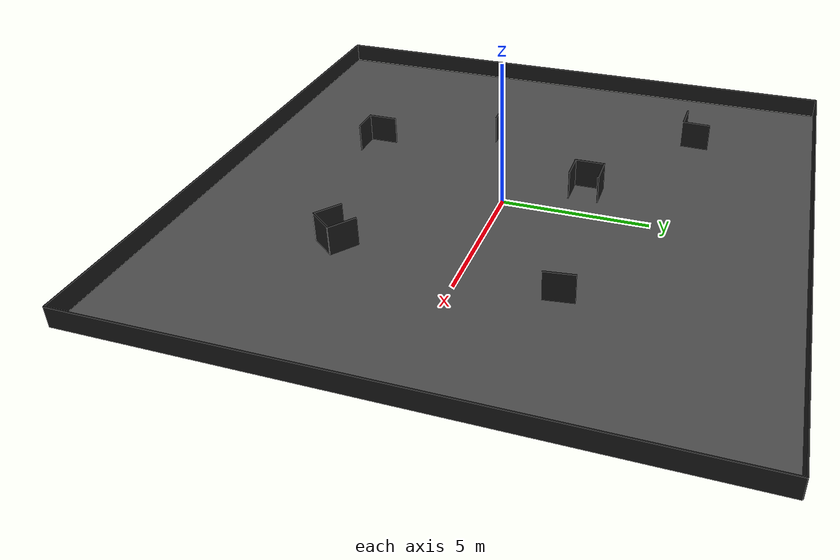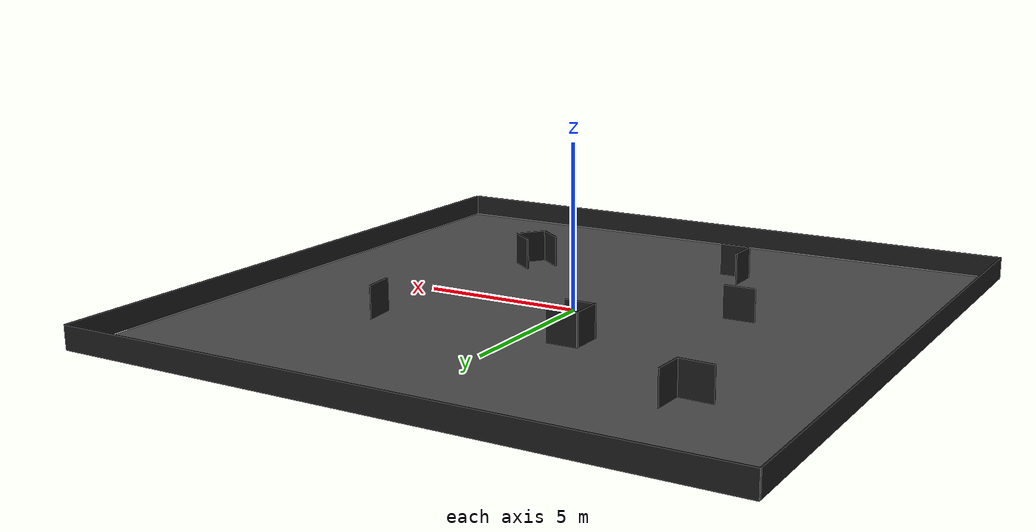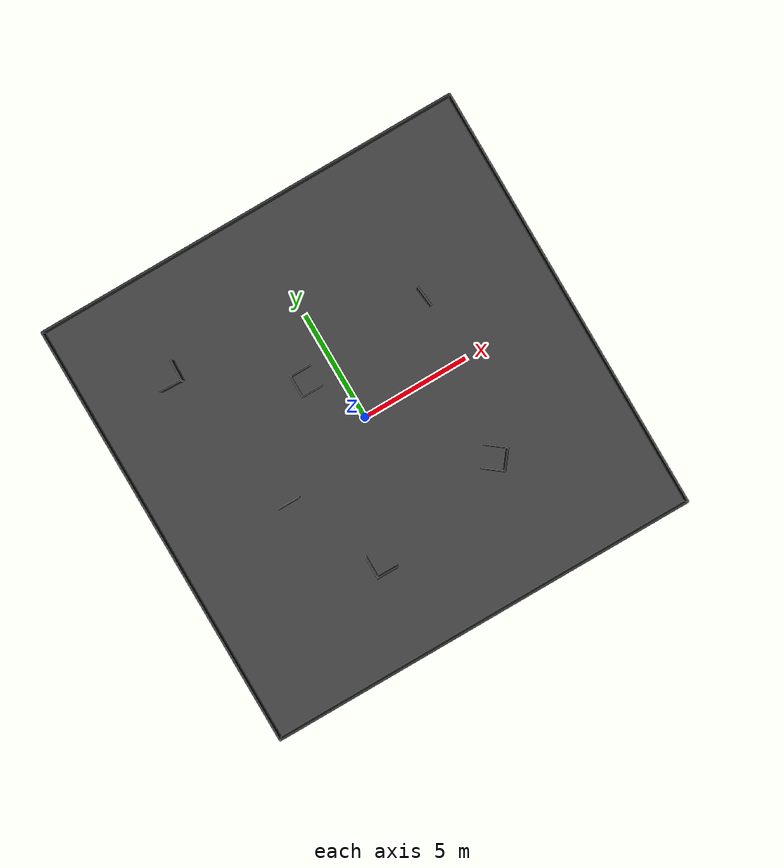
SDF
<sdf version="1.6">
 <world name="default">
  <model name="labrob_ground">
   <static>1</static>
   <link name="link">
    <collision name="collision">
     <geometry><plane><normal>0 0 1</normal><size>20 20</size></plane></geometry>
     <surface><friction><ode><mu>100</mu><mu2>50</mu2></ode></friction></surface>
    </collision>
    <visual name="visual">
     <cast_shadows>0</cast_shadows>
     <geometry><plane><normal>0 0 1</normal><size>20 20</size></plane></geometry>
     <material>
      <script>
       <uri>model://labrob_ground/materials/scripts/</uri>
       <uri>model://labrob_ground/materials/textures/</uri>
       <name>Labrob/AsphaltGround</name>
      </script>
     </material>
    </visual>
   </link>
  </model>
  <light name="sun" type="directional">
   <pose>0 0 10 0 -0 0</pose>
   <diffuse>0.8 0.8 0.8 1</diffuse>
   <specular>0.1 0.1 0.1 1</specular>
   <attenuation>
    <range>1000</range>
    <constant>0.9</constant>
    <linear>0.01</linear>
    <quadratic>0.001</quadratic>
   </attenuation>
   <direction>-0.5 0.5 -1</direction>
  </light>
  <model name="borders">
   <static>1</static>
   <link name="chassis_pos_x">
    <pose>10 0 0.35 0 -0 1.57079</pose>
    <collision name="collision_pos_x"><geometry><box><size>20 0.05 0.7</size></box></geometry></collision>
    <visual name="visual">
     <geometry><box><size>20 0.05 0.7</size></box></geometry>
     <material>
      <ambient>0.1 0.1 0.1 1</ambient>
      <diffuse>0.1 0.1 0.1 1</diffuse>
      <specular>0.1 0.1 0.1 1</specular>
      <emissive>0 0 0 0</emissive>
     </material>
    </visual>
    <sensor name="contact_sensor_1" type="contact">
     <plugin name="my_contact_plugin" filename="libgazebo_ros_bumper.so">
      <bumperTopicName>border_bumper</bumperTopicName>
      <frameName>world</frameName>
     </plugin>
     <contact><collision>collision_pos_x</collision><topic>__default_topic__</topic></contact>
    </sensor>
   </link>
   <link name="chassis_neg_x">
    <pose>-10 0 0.35 0 -0 1.57079</pose>
    <collision name="collision_neg_x"><geometry><box><size>20 0.05 0.7</size></box></geometry></collision>
    <visual name="visual">
     <geometry><box><size>20 0.05 0.7</size></box></geometry>
     <material>
      <ambient>0.1 0.1 0.1 1</ambient>
      <diffuse>0.1 0.1 0.1 1</diffuse>
      <specular>0.1 0.1 0.1 1</specular>
      <emissive>0 0 0 0</emissive>
     </material>
    </visual>
    <sensor name="contact_sensor_2" type="contact">
     <plugin name="my_contact_plugin" filename="libgazebo_ros_bumper.so">
      <bumperTopicName>border_bumper</bumperTopicName>
      <frameName>world</frameName>
     </plugin>
     <contact><collision>collision_neg_x</collision><topic>__default_topic__</topic></contact>
    </sensor>
   </link>
   <link name="chassis_pos_y">
    <pose>0 10 0.35 0 -0 0</pose>
    <collision name="collision_pos_y"><geometry><box><size>20 0.05 0.7</size></box></geometry></collision>
    <visual name="visual">
     <geometry><box><size>20 0.05 0.7</size></box></geometry>
     <material>
      <ambient>0.1 0.1 0.1 1</ambient>
      <diffuse>0.1 0.1 0.1 1</diffuse>
      <specular>0.1 0.1 0.1 1</specular>
      <emissive>0 0 0 0</emissive>
     </material>
    </visual>
    <sensor name="contact_sensor_3" type="contact">
     <plugin name="my_contact_plugin" filename="libgazebo_ros_bumper.so">
      <bumperTopicName>border_bumper</bumperTopicName>
      <frameName>world</frameName>
     </plugin>
     <contact><collision>collision_pos_y</collision><topic>__default_topic__</topic></contact>
    </sensor>
   </link>
   <link name="chassis_neg_y">
    <pose>0 -10 0.35 0 -0 0</pose>
    <collision name="collision_neg_y"><geometry><box><size>20 0.05 0.7</size></box></geometry></collision>
    <visual name="visual">
     <geometry><box><size>20 0.05 0.7</size></box></geometry>
     <material>
      <ambient>0.1 0.1 0.1 1</ambient>
      <diffuse>0.1 0.1 0.1 1</diffuse>
      <specular>0.1 0.1 0.1 1</specular>
      <emissive>0 0 0 0</emissive>
     </material>
    </visual>
    <sensor name="contact_sensor_4" type="contact">
     <plugin name="my_contact_plugin" filename="libgazebo_ros_bumper.so">
      <bumperTopicName>border_bumper</bumperTopicName>
      <frameName>world</frameName>
     </plugin>
     <contact><collision>collision_neg_y</collision><topic>__default_topic__</topic></contact>
    </sensor>
   </link>
  </model>
  <gravity>0 0 -9.8</gravity>
  <magnetic_field>6e-06 2.3e-05 -4.2e-05</magnetic_field>
  <atmosphere type="adiabatic"/>
  <physics name="default_physics" default="0" type="ode">
   <max_step_size>0.001</max_step_size>
   <real_time_factor>1</real_time_factor>
   <real_time_update_rate>1000</real_time_update_rate>
  </physics>
  <scene><ambient>0.4 0.4 0.4 1</ambient><background>0.7 0.7 0.7 1</background><shadows>1</shadows></scene>
  <spherical_coordinates>
   <surface_model>EARTH_WGS84</surface_model>
   <latitude_deg>0</latitude_deg>
   <longitude_deg>0</longitude_deg>
   <elevation>0</elevation>
   <heading_deg>0</heading_deg>
  </spherical_coordinates>
  <model name="barrier_1">
   <static>1</static>
   <link name="chassis">
    <pose>0 0 0.5 0 -0 0</pose>
    <collision name="barrier_collision"><geometry><box><size>1 0.05 1</size></box></geometry></collision>
    <visual name="visual">
     <geometry><box><size>1 0.05 1</size></box></geometry>
     <material>
      <ambient>0.1 0.1 0.1 1</ambient>
      <diffuse>0.1 0.1 0.1 1</diffuse>
      <specular>0.1 0.1 0.1 1</specular>
      <emissive>0 0 0 0</emissive>
     </material>
    </visual>
    <sensor name="contact_sensor_1" type="contact">
     <plugin name="my_contact_plugin" filename="libgazebo_ros_bumper.so">
      <bumperTopicName>obstacle_bumper</bumperTopicName>
      <frameName>world</frameName>
     </plugin>
     <contact><collision>barrier_collision</collision><topic>__default_topic__</topic></contact>
    </sensor>
   </link>
   <pose>-4.59638 -1.52932 0 0 -0 0</pose>
  </model>
  <model name="barrier_2">
   <static>1</static>
   <link name="chassis">
    <pose>0 0 0.5 0 -0 0</pose>
    <collision name="barrier_collision"><geometry><box><size>1 0.05 1</size></box></geometry></collision>
    <visual name="visual">
     <geometry><box><size>1 0.05 1</size></box></geometry>
     <material>
      <ambient>0.1 0.1 0.1 1</ambient>
      <diffuse>0.1 0.1 0.1 1</diffuse>
      <specular>0.1 0.1 0.1 1</specular>
      <emissive>0 0 0 0</emissive>
     </material>
    </visual>
    <collision name="barrier_collision2">
     <pose>-0.475 0.525 0 0 -0 1.57</pose>
     <geometry><box><size>1 0.05 1</size></box></geometry>
    </collision>
    <visual name="visual2">
     <pose>-0.475 0.525 0 0 -0 1.57</pose>
     <geometry><box><size>1 0.05 1</size></box></geometry>
     <material>
      <ambient>0.1 0.1 0.1 1</ambient>
      <diffuse>0.1 0.1 0.1 1</diffuse>
      <specular>0.1 0.1 0.1 1</specular>
      <emissive>0 0 0 0</emissive>
     </material>
    </visual>
    <sensor name="contact_sensor_1" type="contact">
     <plugin name="my_contact_plugin" filename="libgazebo_ros_bumper.so">
      <bumperTopicName>obstacle_bumper</bumperTopicName>
      <frameName>world</frameName>
     </plugin>
     <contact><collision>barrier_collision</collision><topic>__default_topic__</topic></contact>
    </sensor>
    <sensor name="contact_sensor_2" type="contact">
     <plugin name="my_contact_plugin" filename="libgazebo_ros_bumper.so">
      <bumperTopicName>obstacle_bumper</bumperTopicName>
      <frameName>world</frameName>
     </plugin>
     <contact><collision>barrier_collision2</collision><topic>__default_topic__</topic></contact>
    </sensor>
   </link>
   <pose>-2.48109 -6.14206 0 0 -0 0</pose>
  </model>
  <model name="barrier_3">
   <static>1</static>
   <link name="chassis">
    <pose>0 0 0.5 0 -0 0</pose>
    <collision name="collision"><geometry><box><size>1 0.05 1</size></box></geometry></collision>
    <visual name="visual">
     <geometry><box><size>1 0.05 1</size></box></geometry>
     <material>
      <ambient>0.1 0.1 0.1 1</ambient>
      <diffuse>0.1 0.1 0.1 1</diffuse>
      <specular>0.1 0.1 0.1 1</specular>
      <emissive>0 0 0 0</emissive>
     </material>
    </visual>
    <collision name="collision2">
     <pose>-0.475 0.525 0 0 -0 1.57</pose>
     <geometry><box><size>1 0.05 1</size></box></geometry>
    </collision>
    <visual name="visual2">
     <pose>-0.475 0.525 0 0 -0 1.57</pose>
     <geometry><box><size>1 0.05 1</size></box></geometry>
     <material>
      <ambient>0.1 0.1 0.1 1</ambient>
      <diffuse>0.1 0.1 0.1 1</diffuse>
      <specular>0.1 0.1 0.1 1</specular>
      <emissive>0 0 0 0</emissive>
     </material>
    </visual>
    <collision name="collision3">
     <pose>0 1 0 0 -0 0</pose>
     <geometry><box><size>1 0.05 1</size></box></geometry>
    </collision>
    <visual name="visual3">
     <pose>0 1 0 0 -0 0</pose>
     <geometry><box><size>1 0.05 1</size></box></geometry>
     <material>
      <ambient>0.1 0.1 0.1 1</ambient>
      <diffuse>0.1 0.1 0.1 1</diffuse>
      <specular>0.1 0.1 0.1 1</specular>
      <emissive>0 0 0 0</emissive>
     </material>
    </visual>
    <sensor name="contact_sensor_1" type="contact">
     <plugin name="my_contact_plugin" filename="libgazebo_ros_bumper.so">
      <bumperTopicName>obstacle_bumper</bumperTopicName>
      <frameName>world</frameName>
     </plugin>
     <contact><collision>collision</collision><topic>__default_topic__</topic></contact>
    </sensor>
    <sensor name="contact_sensor_2" type="contact">
     <plugin name="my_contact_plugin" filename="libgazebo_ros_bumper.so">
      <bumperTopicName>obstacle_bumper</bumperTopicName>
      <frameName>world</frameName>
     </plugin>
     <contact><collision>collision2</collision><topic>__default_topic__</topic></contact>
    </sensor>
    <sensor name="contact_sensor_3" type="contact">
     <plugin name="my_contact_plugin" filename="libgazebo_ros_bumper.so">
      <bumperTopicName>obstacle_bumper</bumperTopicName>
      <frameName>world</frameName>
     </plugin>
     <contact><collision>collision3</collision><topic>__default_topic__</topic></contact>
    </sensor>
   </link>
   <pose>-1.37805 2.07015 0 0 -0 0</pose>
  </model>
  <model name="barrier_3_0">
   <static>1</static>
   <link name="chassis">
    <pose>0 0 0.5 0 -0 0</pose>
    <collision name="collision"><geometry><box><size>1 0.05 1</size></box></geometry></collision>
    <visual name="visual">
     <geometry><box><size>1 0.05 1</size></box></geometry>
     <material>
      <ambient>0.1 0.1 0.1 1</ambient>
      <diffuse>0.1 0.1 0.1 1</diffuse>
      <specular>0.1 0.1 0.1 1</specular>
      <emissive>0 0 0 0</emissive>
     </material>
    </visual>
    <collision name="collision2">
     <pose>-0.475 0.525 0 0 -0 1.57</pose>
     <geometry><box><size>1 0.05 1</size></box></geometry>
    </collision>
    <visual name="visual2">
     <pose>-0.475 0.525 0 0 -0 1.57</pose>
     <geometry><box><size>1 0.05 1</size></box></geometry>
     <material>
      <ambient>0.1 0.1 0.1 1</ambient>
      <diffuse>0.1 0.1 0.1 1</diffuse>
      <specular>0.1 0.1 0.1 1</specular>
      <emissive>0 0 0 0</emissive>
     </material>
    </visual>
    <collision name="collision3">
     <pose>0 1 0 0 -0 0</pose>
     <geometry><box><size>1 0.05 1</size></box></geometry>
    </collision>
    <visual name="visual3">
     <pose>0 1 0 0 -0 0</pose>
     <geometry><box><size>1 0.05 1</size></box></geometry>
     <material>
      <ambient>0.1 0.1 0.1 1</ambient>
      <diffuse>0.1 0.1 0.1 1</diffuse>
      <specular>0.1 0.1 0.1 1</specular>
      <emissive>0 0 0 0</emissive>
     </material>
    </visual>
    <sensor name="contact_sensor_1" type="contact">
     <plugin name="my_contact_plugin" filename="libgazebo_ros_bumper.so">
      <bumperTopicName>obstacle_bumper</bumperTopicName>
      <frameName>world</frameName>
     </plugin>
     <contact><collision>collision</collision><topic>__default_topic__</topic></contact>
    </sensor>
    <sensor name="contact_sensor_2" type="contact">
     <plugin name="my_contact_plugin" filename="libgazebo_ros_bumper.so">
      <bumperTopicName>obstacle_bumper</bumperTopicName>
      <frameName>world</frameName>
     </plugin>
     <contact><collision>collision2</collision><topic>__default_topic__</topic></contact>
    </sensor>
    <sensor name="contact_sensor_3" type="contact">
     <plugin name="my_contact_plugin" filename="libgazebo_ros_bumper.so">
      <bumperTopicName>obstacle_bumper</bumperTopicName>
      <frameName>world</frameName>
     </plugin>
     <contact><collision>collision3</collision><topic>__default_topic__</topic></contact>
    </sensor>
   </link>
   <pose>4.17461 -3.87005 0 0 -0 2.48914</pose>
  </model>
  <model name="barrier_1_0">
   <static>1</static>
   <link name="chassis">
    <pose>0 0 0.5 0 -0 0</pose>
    <collision name="barrier_collision"><geometry><box><size>1 0.05 1</size></box></geometry></collision>
    <visual name="visual">
     <geometry><box><size>1 0.05 1</size></box></geometry>
     <material>
      <ambient>0.1 0.1 0.1 1</ambient>
      <diffuse>0.1 0.1 0.1 1</diffuse>
      <specular>0.1 0.1 0.1 1</specular>
      <emissive>0 0 0 0</emissive>
     </material>
    </visual>
    <sensor name="contact_sensor_1" type="contact">
     <plugin name="my_contact_plugin" filename="libgazebo_ros_bumper.so">
      <bumperTopicName>obstacle_bumper</bumperTopicName>
      <frameName>world</frameName>
     </plugin>
     <contact><collision>barrier_collision</collision><topic>__default_topic__</topic></contact>
    </sensor>
   </link>
   <pose>4.74172 3.14757 0 0 -0 1.68485</pose>
  </model>
  <model name="barrier_2_0">
   <static>1</static>
   <link name="chassis">
    <pose>0 0 0.5 0 -0 0</pose>
    <collision name="barrier_collision"><geometry><box><size>1 0.05 1</size></box></geometry></collision>
    <visual name="visual">
     <geometry><box><size>1 0.05 1</size></box></geometry>
     <material>
      <ambient>0.1 0.1 0.1 1</ambient>
      <diffuse>0.1 0.1 0.1 1</diffuse>
      <specular>0.1 0.1 0.1 1</specular>
      <emissive>0 0 0 0</emissive>
     </material>
    </visual>
    <collision name="barrier_collision2">
     <pose>-0.475 0.525 0 0 -0 1.57</pose>
     <geometry><box><size>1 0.05 1</size></box></geometry>
    </collision>
    <visual name="visual2">
     <pose>-0.475 0.525 0 0 -0 1.57</pose>
     <geometry><box><size>1 0.05 1</size></box></geometry>
     <material>
      <ambient>0.1 0.1 0.1 1</ambient>
      <diffuse>0.1 0.1 0.1 1</diffuse>
      <specular>0.1 0.1 0.1 1</specular>
      <emissive>0 0 0 0</emissive>
     </material>
    </visual>
    <sensor name="contact_sensor_1" type="contact">
     <plugin name="my_contact_plugin" filename="libgazebo_ros_bumper.so">
      <bumperTopicName>obstacle_bumper</bumperTopicName>
      <frameName>world</frameName>
     </plugin>
     <contact><collision>barrier_collision</collision><topic>__default_topic__</topic></contact>
    </sensor>
    <sensor name="contact_sensor_2" type="contact">
     <plugin name="my_contact_plugin" filename="libgazebo_ros_bumper.so">
      <bumperTopicName>obstacle_bumper</bumperTopicName>
      <frameName>world</frameName>
     </plugin>
     <contact><collision>barrier_collision2</collision><topic>__default_topic__</topic></contact>
    </sensor>
   </link>
   <pose>-5.86559 5.72561 0 0 -0 1.53228</pose>
  </model>
 </world>
</sdf>
